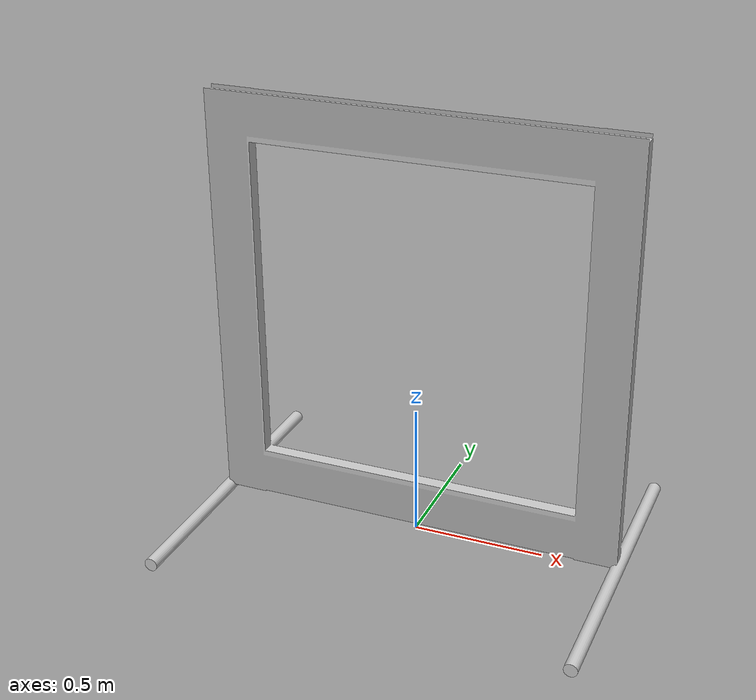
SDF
<?xml version="1.0" ?>
<sdf version="1.6">
  <model name='gate'>
    <static>1</static>
    <pose frame=''>0 0 0 0 0 0</pose>
    <link name='gate'>
      <visual name='vis_gate'>
        <geometry>
          <mesh>
            <uri>/home/sim/ardupilot_gazebo_docker/ardupilot_docker/catkin_ws/src/drone_sim/models/irs_gates/gate_1/skoltech_gate_1.dae</uri>
          </mesh>
        </geometry>
      </visual>
      <collision name='col_gate'>
        <geometry>
          <mesh>
            <uri>/home/sim/ardupilot_gazebo_docker/ardupilot_docker/catkin_ws/src/drone_sim/models/irs_gates/gate_1/skoltech_gate_1.dae</uri>
          </mesh>
        </geometry>
        <max_contacts>10</max_contacts>
        <surface>
          <contact>
            <ode/>
          </contact>
          <bounce/>
          <friction>
            <torsional>
              <ode/>
            </torsional>
            <ode/>
          </friction>
        </surface>
      </collision>
      <self_collide>0</self_collide>
      <enable_wind>0</enable_wind>
      <kinematic>0</kinematic>
    </link>
  </model>
</sdf>
